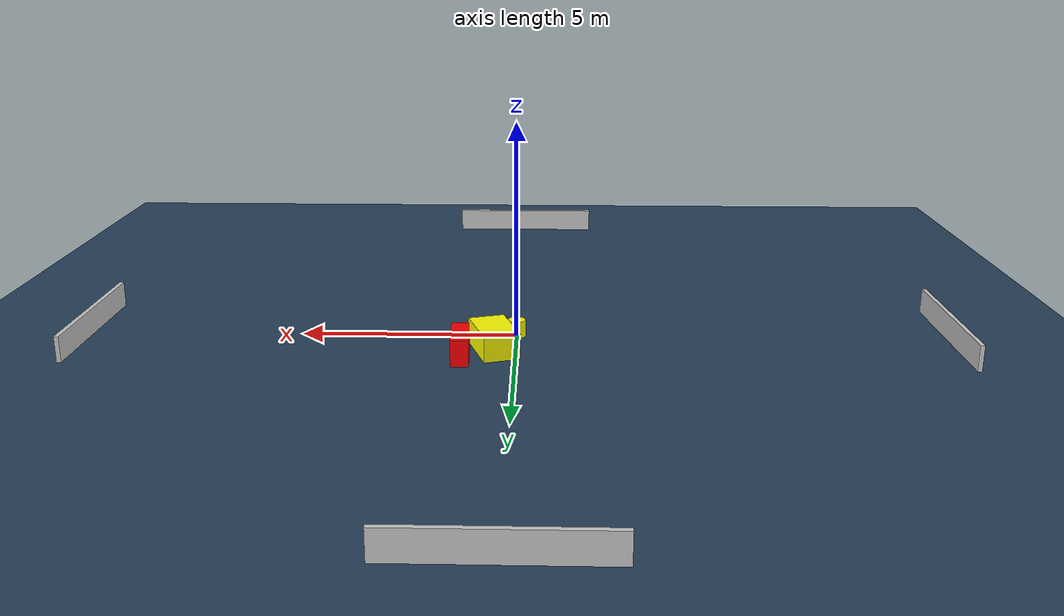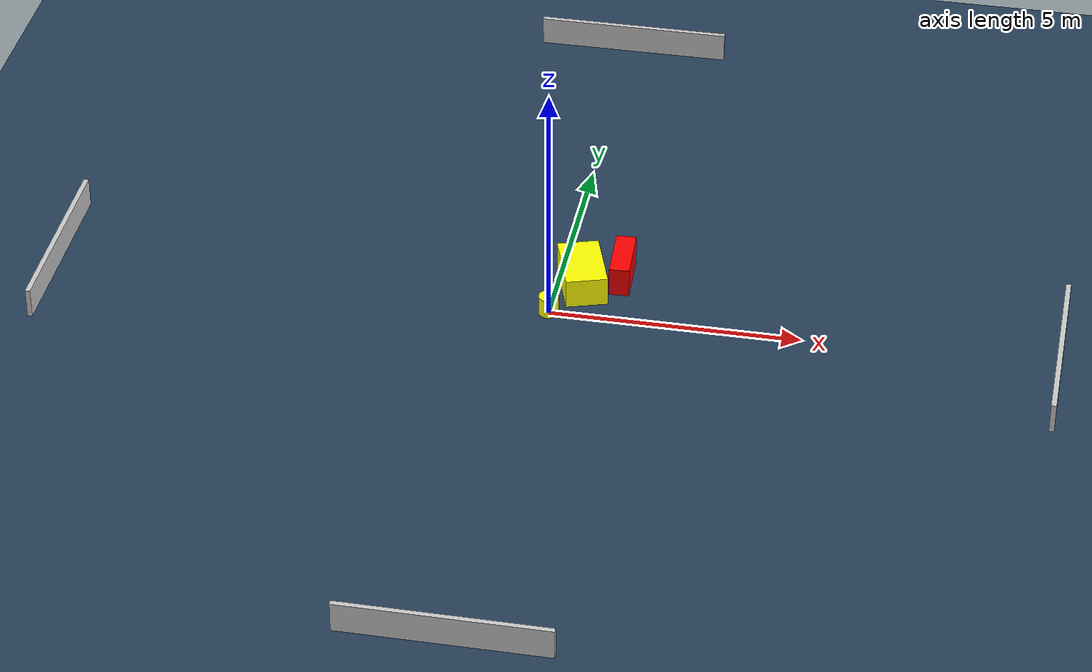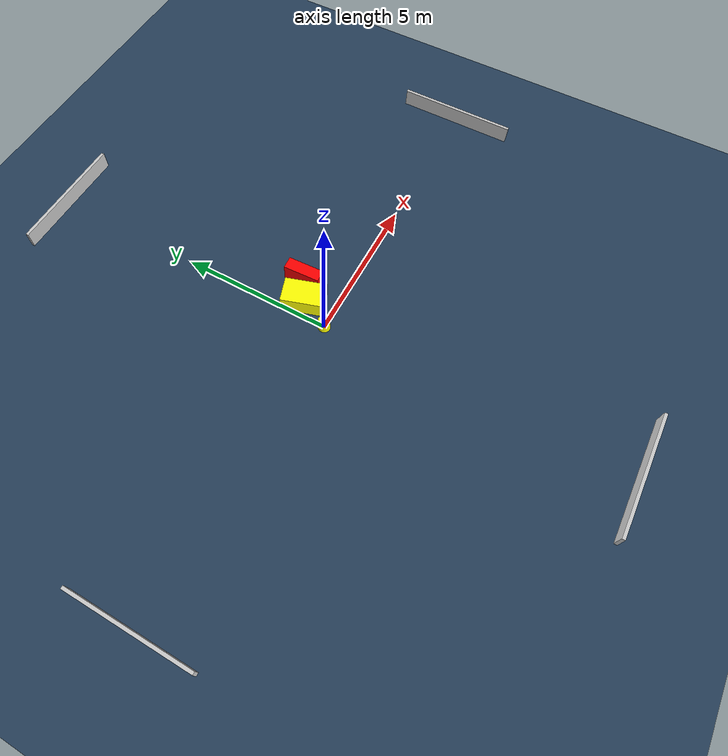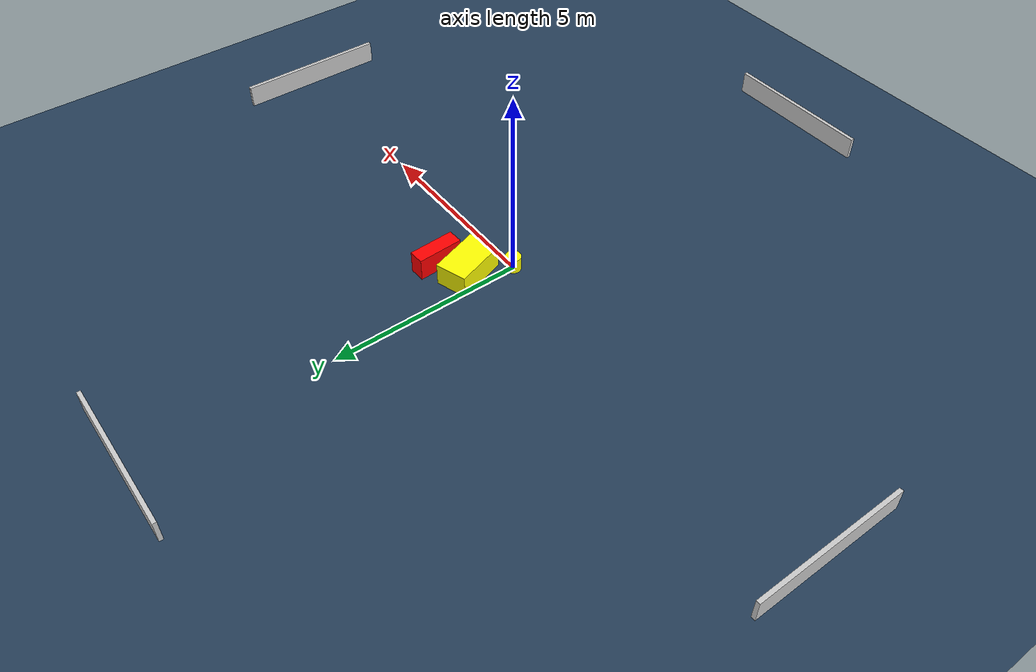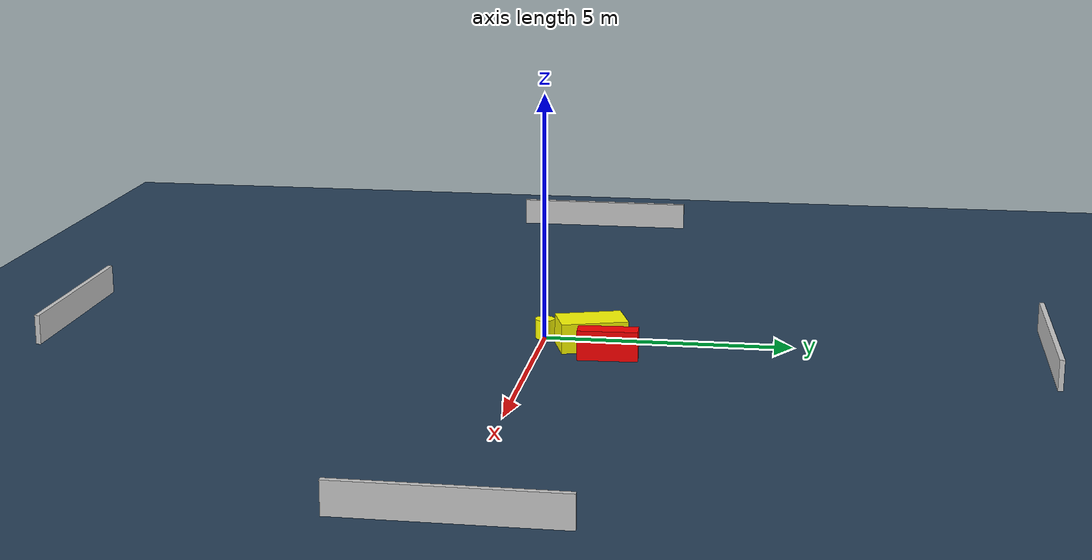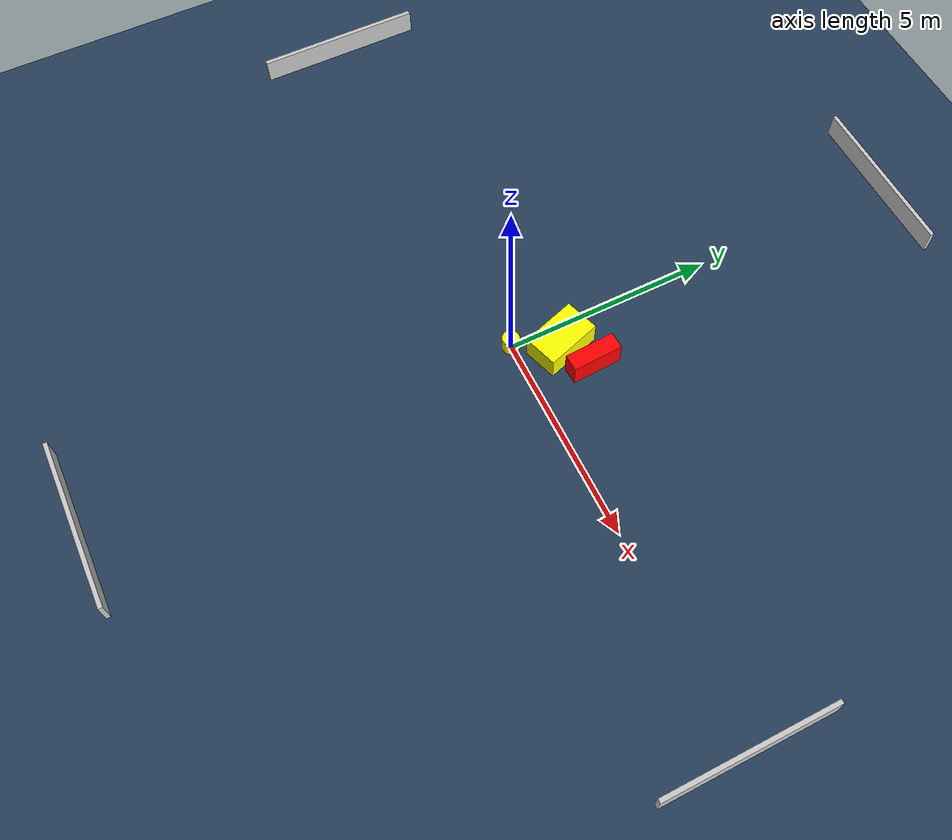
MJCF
<?xml version="1.0" ?>
<mujoco model="generated_environment">
  <option timestep="0.01" integrator="RK4" cone="elliptic"/>
  <default>
    <geom density="1"/>
  </default>
  <asset>
    <texture builtin="gradient" height="3072" name="skybox" rgb1="0.3 0.5 0.7" rgb2="0 0 0" type="skybox" width="512"/>
    <texture builtin="checker" height="300" name="groundplane" rgb1="0.2 0.3 0.4" rgb2="0.1 0.2 0.3" type="2d" width="300"/>
    <material name="groundplane" reflectance="0.2" texrepeat="5 5" texture="groundplane"/>
  </asset>
  <worldbody>
    <light dir="0 0 -1" directional="true" pos="0 0 1.5"/>
    <geom condim="3" friction="0.5 0.005 0.001" material="groundplane" name="floor" pos="0 0 0" size="0 0 0.05" type="plane"/>
    <body name="walls">
      <geom name="wall_1" condim="4" pos="-10.0 0.0 0.3" rgba="0.800000011920929 0.800000011920929 0.800000011920929 1.0" size="0.05 2.0 0.3" type="box"/>
      <geom name="wall_2" condim="4" pos="10.0 0.0 0.3" rgba="0.800000011920929 0.800000011920929 0.800000011920929 1.0" size="0.05 2.0 0.3" type="box"/>
      <geom name="wall_3" condim="4" pos="0.0 -10.0 0.3" rgba="0.800000011920929 0.800000011920929 0.800000011920929 1.0" size="2.0 0.05 0.3" type="box"/>
      <geom name="wall_4" condim="4" pos="0.0 10.0 0.3" rgba="0.800000011920929 0.800000011920929 0.800000011920929 1.0" size="2.0 0.05 0.3" type="box"/>
    </body>
    <body name="robot">
      <joint name="joint_x" type="slide" pos="0 0 0" axis="1 0 0"/>
      <joint name="joint_y" type="slide" pos="0 0 0" axis="0 1 0"/>
      <geom name="robot" type="cylinder" pos="0.0 0.0 0.2" size="0.2 0.2 0.0" mass="5.0" friction="1.0 0.005 0.0001" condim="4" rgba="1.0 1.0 0.0 1.0"/>
    </body>
    <body name="obstacle_1_movable">
      <geom name="obstacle_1_movable" condim="4" pos="0.48669857119885745 1.0099478498561594 0.3" euler="0 0 107.96469844337156" friction="0.0 0.005 0.001" rgba="1.0 1.0 0.0 1.0" size="0.6734930057554178 0.41597005875384885 0.3" type="box" mass="0.1"/>
      <joint type="free"/>
    </body>
    <body name="obstacle_2_static">
      <geom name="obstacle_2_static" condim="4" pos="1.2260995677346889 1.4310660398864035 0.3" euler="0 0 182.7439244794527" friction="0.0 0.005 0.001" rgba="1.0 0.0 0.0 1.0" size="0.2008862724121805 0.5961259612865079 0.3" type="box"/>
    </body>
  </worldbody>
  <actuator>
    <motor name="actuator_x" joint="joint_x" gear="1" ctrlrange="-1 1"/>
    <motor name="actuator_y" joint="joint_y" gear="1" ctrlrange="-1 1"/>
  </actuator>
</mujoco>
